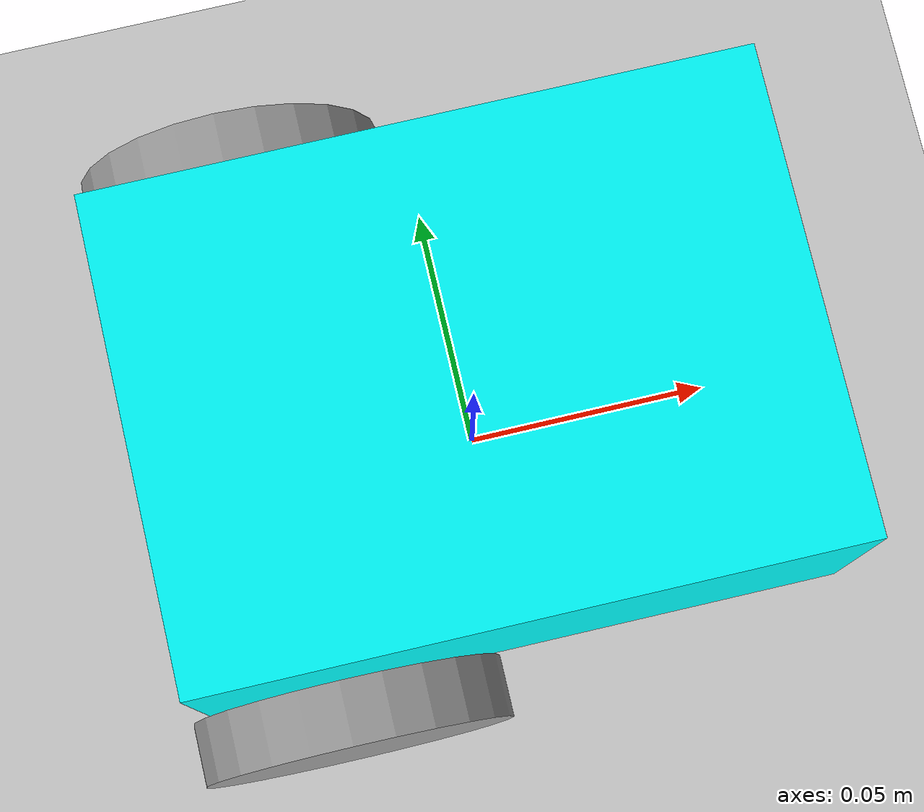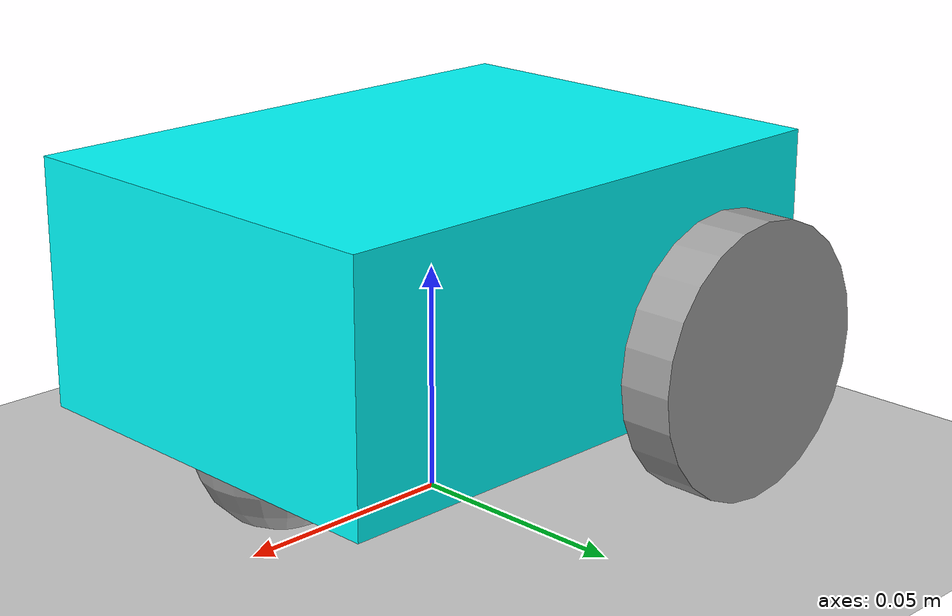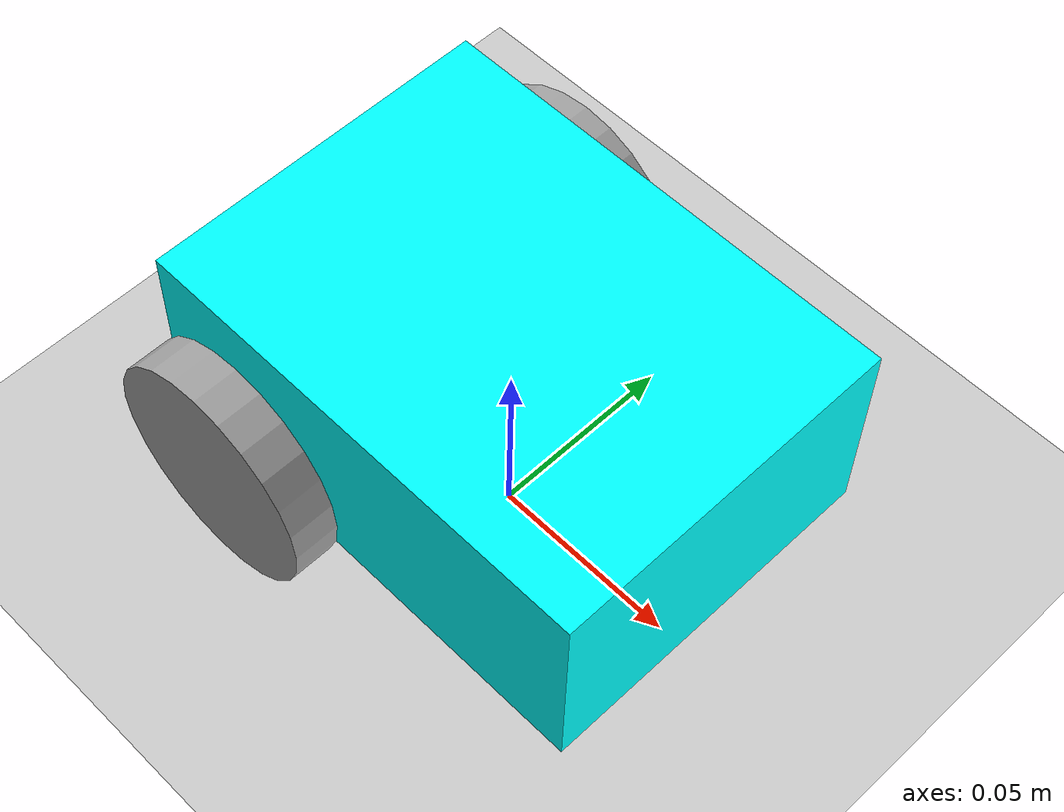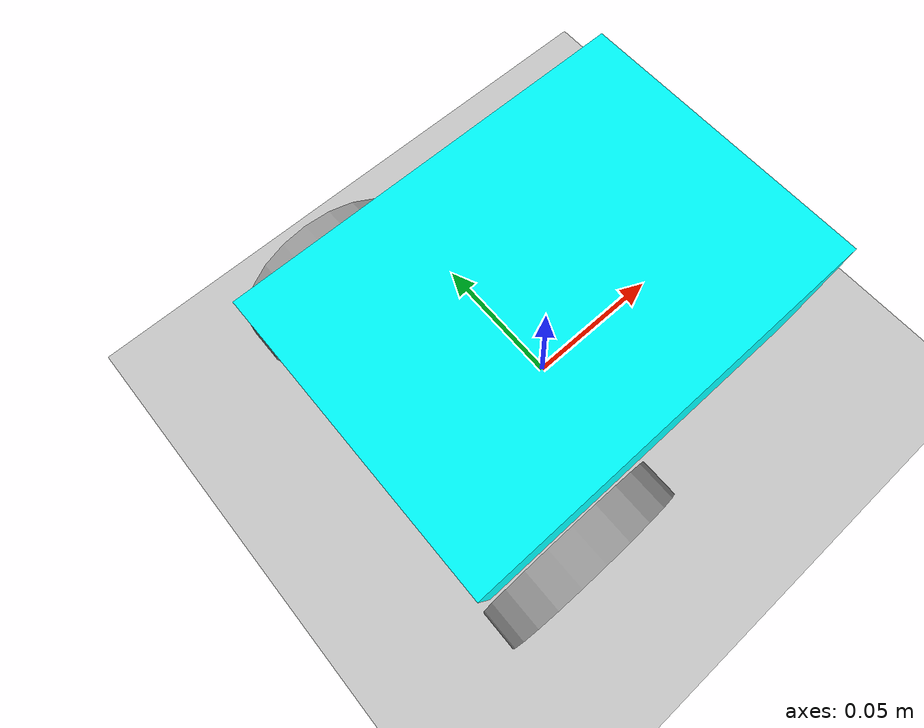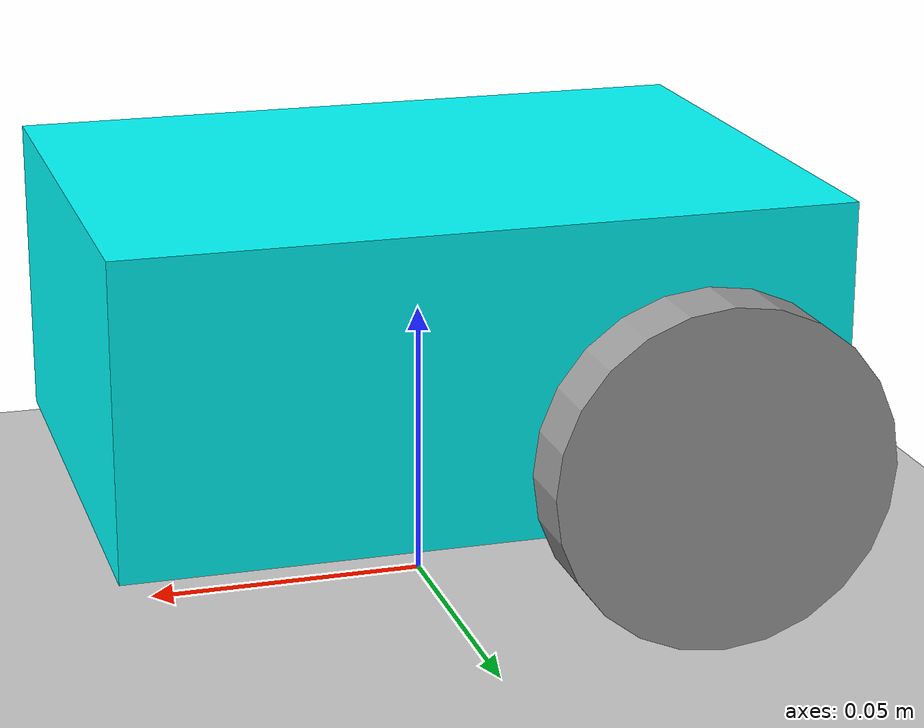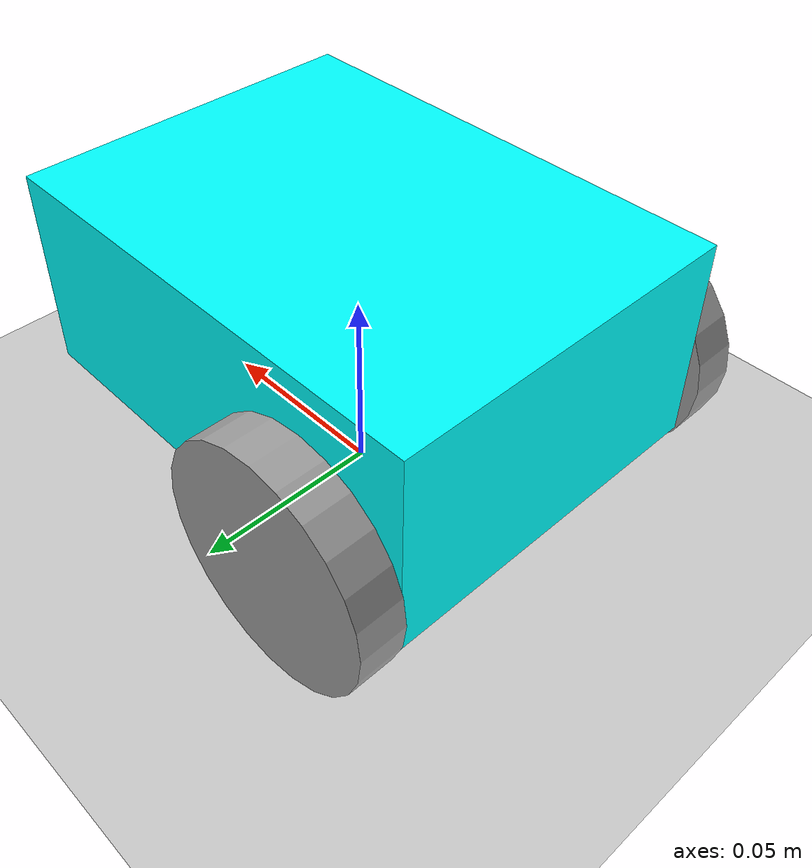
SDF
<?xml version="1.0" ?>
<sdf version="1.8">
  <world name="default">

    <light name="sun" type="directional">
      <cast_shadows>true</cast_shadows>
      <pose>0 0 10 0 0 0</pose>
      <diffuse>0.8 0.8 0.8 1</diffuse>
      <specular>0.2 0.2 0.2 1</specular>
      <attenuation>
        <range>1000</range>
        <constant>0.9</constant>
        <linear>0.01</linear>
        <quadratic>0.001</quadratic>
      </attenuation>
      <direction>-0.5 0.1 -0.9</direction>
    </light>

    <model name="ground_plane">
      <static>true</static>
      <link name="link">
        <collision name="collision">
          <geometry>
            <plane>
              <normal>0 0 1</normal>
              <size>100 100</size>
            </plane>
          </geometry>
        </collision>
        <visual name="visual">
          <geometry>
            <plane>
              <normal>0 0 1</normal>
              <size>100 100</size>
            </plane>
          </geometry>
          <material>
            <ambient>0.8 0.8 0.8 1</ambient>
            <diffuse>0.8 0.8 0.8 1</diffuse>
            <specular>0.8 0.8 0.8 1</specular>
          </material>
        </visual>
      </link>
    </model>

    <model name="robot">
      <self_collide>true</self_collide>
      <pose>0 0 0.05 0 0 0</pose>
      <include merge="true">
        <uri>/mnt/d/ros/install/robot_description/share/robot_description/src/models/robot.sdf</uri>
      </include>

      <plugin
        filename="gz-sim-joint-state-publisher-system"
        name="gz::sim::systems::JointStatePublisher">
      </plugin>

      <plugin
        filename="gz-sim-pose-publisher-system"
        name="gz::sim::systems::PosePublisher">
        <publish_link_pose>true</publish_link_pose>
        <use_pose_vector_msg>true</use_pose_vector_msg>
        <static_publisher>true</static_publisher>
        <static_update_frequency>1</static_update_frequency>
      </plugin>

      <plugin
        filename="gz-sim-odometry-publisher-system"
        name="gz::sim::systems::OdometryPublisher">
        <odom_frame>robot/odom</odom_frame>
        <robot_base_frame>robot</robot_base_frame>
      </plugin>

    </model>
  </world>
</sdf>

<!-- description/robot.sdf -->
<sdf version='1.11'>
  <model name='robot'>
    <link name='chassis'>
      <inertial>
        <pose>0 0 -0.044999999999999998 0 0 0</pose>
        <mass>1</mass>
        <inertia>
          <ixx>0.0009637500000000002</ixx>
          <ixy>1.7060354005542469e-19</ixy>
          <ixz>-3.0593910047299102e-19</ixz>
          <iyy>0.0015659999999999999</iyy>
          <iyz>8.6665493702058186e-35</iyz>
          <izz>0.00204375</izz>
        </inertia>
      </inertial>
      <collision name='chassis_collision'>
        <pose>0 0 0 0 0 0</pose>
        <geometry>
          <box>
            <size>0.126 0.092999999999999999 0.053999999999999999</size>
          </box>
        </geometry>
      </collision>
      <visual name='chassis_visual'>
        <pose>0 0 0 0 0 0</pose>
        <geometry>
          <box>
            <size>0.126 0.092999999999999999 0.053999999999999999</size>
          </box>
        </geometry>
        <material>
          <diffuse>0 1 1 1</diffuse>
          <ambient>0 1 1 1</ambient>
        </material>
      </visual>
    </link>

    <joint name='caster_joint' type='ball'>
      <pose relative_to='chassis'>0.042000000000000003 0 -0.027 0 0 0</pose>
      <parent>chassis</parent>
      <child>caster</child>
    </joint>

    <link name='caster'>
      <pose relative_to='caster_joint'>0 0 0 0 0 0</pose>
      <inertial>
        <pose>0 0 0 0 0 0</pose>
        <mass>0.10000000000000001</mass>
        <inertia>
          <ixx>1.296e-05</ixx>
          <ixy>0</ixy>
          <ixz>0</ixz>
          <iyy>1.296e-05</iyy>
          <iyz>0</iyz>
          <izz>1.296e-05</izz>
        </inertia>
      </inertial>
      <collision name='caster_collision'>
        <pose>0 0 0 0 0 0</pose>
        <geometry>
          <sphere>
            <radius>0.017999999999999999</radius>
          </sphere>
        </geometry>
      </collision>
      <visual name='caster_visual'>
        <pose>0 0 0 0 0 0</pose>
        <geometry>
          <sphere>
            <radius>0.017999999999999999</radius>
          </sphere>
        </geometry>
        <material>
          <diffuse>0.625 0.625 0.625 1</diffuse>
          <ambient>0.625 0.625 0.625 1</ambient>
        </material>
      </visual>
    </link>

    <joint name='left_wheel_joint' type='revolute'>
      <pose relative_to='chassis'>-0.035999999999999997 0.053999999999999999 -0.014999999999999999 0 0 0</pose>
      <parent>chassis</parent>
      <child>left_wheel</child>
      <axis>
        <xyz>0 1 0</xyz>
        <limit>
          <lower>-inf</lower>
          <upper>inf</upper>
        </limit>
        <dynamics>
          <spring_reference>0</spring_reference>
          <spring_stiffness>0</spring_stiffness>
        </dynamics>
      </axis>
    </joint>

    <link name='left_wheel'>
      <pose relative_to='left_wheel_joint'>0 0 0 0 0 0</pose>
      <inertial>
        <pose>0 0 0 1.5707963267948959 0 0</pose>
        <mass>0.10000000000000001</mass>
        <inertia>
          <ixx>2.37e-05</ixx>
          <ixy>0</ixy>
          <ixz>0</ixz>
          <iyy>2.37e-05</iyy>
          <iyz>0</iyz>
          <izz>4.5000000000000003e-05</izz>
        </inertia>
      </inertial>
      <collision name='left_wheel_collision'>
        <pose>0 0 0 1.5707963267948959 0 0</pose>
        <geometry>
          <cylinder>
            <length>0.012</length>
            <radius>0.029999999999999999</radius>
          </cylinder>
        </geometry>
      </collision>
      <visual name='left_wheel_visual'>
        <pose>0 0 0 1.5707963267948959 0 0</pose>
        <geometry>
          <cylinder>
            <length>0.012</length>
            <radius>0.029999999999999999</radius>
          </cylinder>
        </geometry>
        <material>
          <diffuse>0.625 0.625 0.625 1</diffuse>
          <ambient>0.625 0.625 0.625 1</ambient>
        </material>
      </visual>
    </link>

    <joint name='right_wheel_joint' type='revolute'>
      <pose relative_to='chassis'>-0.035999999999999997 -0.053999999999999999 -0.014999999999999999 0 0 0</pose>
      <parent>chassis</parent>
      <child>right_wheel</child>
      <axis>
        <xyz>0 1 0</xyz>
        <limit>
          <lower>-inf</lower>
          <upper>inf</upper>
        </limit>
        <dynamics>
          <spring_reference>0</spring_reference>
          <spring_stiffness>0</spring_stiffness>
        </dynamics>
      </axis>
    </joint>

    <link name='right_wheel'>
      <pose relative_to='right_wheel_joint'>0 0 0 0 0 0</pose>
      <inertial>
        <pose>0 0 0 1.5707963267948959 0 0</pose>
        <mass>0.10000000000000001</mass>
        <inertia>
          <ixx>2.37e-05</ixx>
          <ixy>0</ixy>
          <ixz>0</ixz>
          <iyy>2.37e-05</iyy>
          <iyz>0</iyz>
          <izz>4.5000000000000003e-05</izz>
        </inertia>
      </inertial>
      <collision name='right_wheel_collision'>
        <pose>0 0 0 1.5707963267948959 0 0</pose>
        <geometry>
          <cylinder>
            <length>0.012</length>
            <radius>0.029999999999999999</radius>
          </cylinder>
        </geometry>
      </collision>
      <visual name='right_wheel_visual'>
        <pose>0 0 0 1.5707963267948959 0 0</pose>
        <geometry>
          <cylinder>
            <length>0.012</length>
            <radius>0.029999999999999999</radius>
          </cylinder>
        </geometry>
        <material>
          <diffuse>0.625 0.625 0.625 1</diffuse>
          <ambient>0.625 0.625 0.625 1</ambient>
        </material>
      </visual>
    </link>

    <frame name='base_joint' attached_to='chassis'>
      <pose>0 0 -0.044999999999999998 0 0 0</pose>
    </frame>

    <frame name='base_footprint' attached_to='base_joint'>
      <pose>0 0 0 0 0 0</pose>
    </frame>

    <plugin
        filename="ignition-gazebo-diff-drive-system"
        name="ignition::gazebo::systems::DiffDrive">
        <left_joint>left_wheel_joint</left_joint>
        <right_joint>right_wheel_joint</right_joint>
        <wheel_separation>0.093</wheel_separation>
        <wheel_radius>0.03</wheel_radius>
        <odom_publish_frequency>1</odom_publish_frequency>
        <max_linear_acceleration>1</max_linear_acceleration>
        <min_linear_acceleration>-1</min_linear_acceleration>
        <max_angular_acceleration>2</max_angular_acceleration>
        <min_angular_acceleration>-2</min_angular_acceleration>
        <max_linear_velocity>0.5</max_linear_velocity>
        <min_linear_velocity>-0.5</min_linear_velocity>
        <max_angular_velocity>1</max_angular_velocity>
        <min_angular_velocity>-1</min_angular_velocity>
      </plugin>

  </model>
</sdf>
